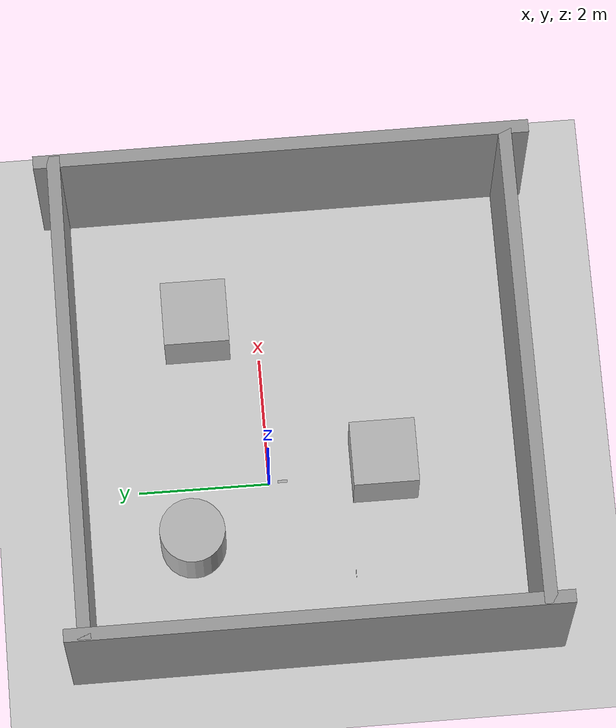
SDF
<sdf version='1.9'>
  <world name='empty'>
    <physics name='1ms' type='ignored'>
      <max_step_size>0.001</max_step_size>
      <real_time_factor>1</real_time_factor>
      <real_time_update_rate>1000</real_time_update_rate>
    </physics>
    <plugin name='gz::sim::systems::Physics' filename='ignition-gazebo-physics-system'/>
    <plugin name='gz::sim::systems::UserCommands' filename='ignition-gazebo-user-commands-system'/>
    <plugin name='gz::sim::systems::SceneBroadcaster' filename='ignition-gazebo-scene-broadcaster-system'/>
    <plugin name='gz::sim::systems::Contact' filename='ignition-gazebo-contact-system'/>
    <plugin name='gz::sim::systems::Sensors' filename='gz-sim-sensors-system'>
      <render_engine>ogre2</render_engine>
    </plugin>
    <gravity>0 0 -9.8</gravity>
    <magnetic_field>6e-06 2.3e-05 -4.2e-05</magnetic_field>
    <atmosphere type='adiabatic'/>
    <scene>
      <ambient>0.4 0.4 0.4 1</ambient>
      <background>0.7 0.7 0.7 1</background>
      <shadows>true</shadows>
    </scene>
    <model name='ground_plane'>
      <static>true</static>
      <link name='link'>
        <collision name='collision'>
          <geometry>
            <plane>
              <normal>0 0 1</normal>
              <size>100 100</size>
            </plane>
          </geometry>
          <surface>
            <friction>
              <ode/>
            </friction>
            <bounce/>
            <contact/>
          </surface>
        </collision>
        <visual name='visual'>
          <geometry>
            <plane>
              <normal>0 0 1</normal>
              <size>100 100</size>
            </plane>
          </geometry>
          <material>
            <ambient>0.8 0.8 0.8 1</ambient>
            <diffuse>0.8 0.8 0.8 1</diffuse>
            <specular>0.8 0.8 0.8 1</specular>
          </material>
        </visual>
        <pose>0 0 0 0 -0 0</pose>
        <inertial>
          <pose>0 0 0 0 -0 0</pose>
          <mass>1</mass>
          <inertia>
            <ixx>1</ixx>
            <ixy>0</ixy>
            <ixz>0</ixz>
            <iyy>1</iyy>
            <iyz>0</iyz>
            <izz>1</izz>
          </inertia>
        </inertial>
        <enable_wind>false</enable_wind>
      </link>
      <pose>0 0 0 0 -0 0</pose>
      <self_collide>false</self_collide>
    </model>
    <model name='box'>
      <pose>0.105622 -1.77155 0.5 0 -0 0</pose>
      <link name='box_link'>
        <inertial>
          <inertia>
            <ixx>0.16666</ixx>
            <ixy>0</ixy>
            <ixz>0</ixz>
            <iyy>0.16666</iyy>
            <iyz>0</iyz>
            <izz>0.16666</izz>
          </inertia>
          <mass>1</mass>
          <pose>0 0 0 0 -0 0</pose>
        </inertial>
        <collision name='box_collision'>
          <geometry>
            <box>
              <size>1 1 1</size>
            </box>
          </geometry>
          <surface>
            <friction>
              <ode/>
            </friction>
            <bounce/>
            <contact/>
          </surface>
        </collision>
        <visual name='box_visual'>
          <geometry>
            <box>
              <size>1 1 1</size>
            </box>
          </geometry>
          <material>
            <ambient>0.3 0.3 0.3 1</ambient>
            <diffuse>0.7 0.7 0.7 1</diffuse>
            <specular>1 1 1 1</specular>
          </material>
        </visual>
        <pose>0 0 0 0 -0 0</pose>
        <enable_wind>false</enable_wind>
      </link>
      <static>false</static>
      <self_collide>false</self_collide>
    </model>
    <model name='box_0'>
      <pose>2.55869 0.947512 0.5 0 -0 0</pose>
      <link name='box_link'>
        <inertial>
          <inertia>
            <ixx>0.16666</ixx>
            <ixy>0</ixy>
            <ixz>0</ixz>
            <iyy>0.16666</iyy>
            <iyz>0</iyz>
            <izz>0.16666</izz>
          </inertia>
          <mass>1</mass>
          <pose>0 0 0 0 -0 0</pose>
        </inertial>
        <collision name='box_collision'>
          <geometry>
            <box>
              <size>1 1 1</size>
            </box>
          </geometry>
          <surface>
            <friction>
              <ode/>
            </friction>
            <bounce/>
            <contact/>
          </surface>
        </collision>
        <visual name='box_visual'>
          <geometry>
            <box>
              <size>1 1 1</size>
            </box>
          </geometry>
          <material>
            <ambient>0.3 0.3 0.3 1</ambient>
            <diffuse>0.7 0.7 0.7 1</diffuse>
            <specular>1 1 1 1</specular>
          </material>
        </visual>
        <pose>0 0 0 0 -0 0</pose>
        <enable_wind>false</enable_wind>
      </link>
      <static>false</static>
      <self_collide>false</self_collide>
    </model>
    <model name='cylinder'>
      <pose>-0.902101 1.22706 0.499999 0 -0 0</pose>
      <link name='cylinder_link'>
        <inertial>
          <inertia>
            <ixx>0.14580000000000001</ixx>
            <ixy>0</ixy>
            <ixz>0</ixz>
            <iyy>0.14580000000000001</iyy>
            <iyz>0</iyz>
            <izz>0.125</izz>
          </inertia>
          <mass>1</mass>
          <pose>0 0 0 0 -0 0</pose>
        </inertial>
        <collision name='cylinder_collision'>
          <geometry>
            <cylinder>
              <radius>0.5</radius>
              <length>1</length>
            </cylinder>
          </geometry>
          <surface>
            <friction>
              <ode/>
            </friction>
            <bounce/>
            <contact/>
          </surface>
        </collision>
        <visual name='cylinder_visual'>
          <geometry>
            <cylinder>
              <radius>0.5</radius>
              <length>1</length>
            </cylinder>
          </geometry>
          <material>
            <ambient>0.3 0.3 0.3 1</ambient>
            <diffuse>0.7 0.7 0.7 1</diffuse>
            <specular>1 1 1 1</specular>
          </material>
        </visual>
        <pose>0 0 0 0 -0 0</pose>
        <enable_wind>false</enable_wind>
      </link>
      <static>false</static>
      <self_collide>false</self_collide>
    </model>
    <model name='grey_wall'>
      <static>true</static>
      <link name='link'>
        <pose>0 0 1.4 0 -0 0</pose>
        <collision name='collision'>
          <geometry>
            <box>
              <size>7.5 0.2 2.8</size>
            </box>
          </geometry>
          <surface>
            <friction>
              <ode/>
            </friction>
            <bounce/>
            <contact/>
          </surface>
        </collision>
        <visual name='visual'>
          <cast_shadows>false</cast_shadows>
          <geometry>
            <box>
              <size>7.5 0.2 2.8</size>
            </box>
          </geometry>
          <material>
            <script>
              <uri>https://fuel.gazebosim.org/1.0/openrobotics/models/grey wall/3/files/materials/scripts</uri>
              <uri>https://fuel.gazebosim.org/1.0/openrobotics/models/grey wall/3/files/materials/textures</uri>
              <name>vrc/grey_wall</name>
            </script>
          </material>
        </visual>
        <inertial>
          <pose>0 0 0 0 -0 0</pose>
          <mass>1</mass>
          <inertia>
            <ixx>1</ixx>
            <ixy>0</ixy>
            <ixz>0</ixz>
            <iyy>1</iyy>
            <iyz>0</iyz>
            <izz>1</izz>
          </inertia>
        </inertial>
        <enable_wind>false</enable_wind>
      </link>
      <pose>0.845785 2.89804 0 0 -0 0</pose>
      <self_collide>false</self_collide>
    </model>
    <model name='grey_wall_0'>
      <static>true</static>
      <link name='link'>
        <pose>0 0 1.4 0 -0 0</pose>
        <collision name='collision'>
          <geometry>
            <box>
              <size>7.5 0.2 2.8</size>
            </box>
          </geometry>
          <surface>
            <friction>
              <ode/>
            </friction>
            <bounce/>
            <contact/>
          </surface>
        </collision>
        <visual name='visual'>
          <cast_shadows>false</cast_shadows>
          <geometry>
            <box>
              <size>7.5 0.2 2.8</size>
            </box>
          </geometry>
          <material>
            <script>
              <uri>https://fuel.gazebosim.org/1.0/openrobotics/models/grey wall/3/files/materials/scripts</uri>
              <uri>https://fuel.gazebosim.org/1.0/openrobotics/models/grey wall/3/files/materials/textures</uri>
              <name>vrc/grey_wall</name>
            </script>
          </material>
        </visual>
        <inertial>
          <pose>0 0 0 0 -0 0</pose>
          <mass>1</mass>
          <inertia>
            <ixx>1</ixx>
            <ixy>0</ixy>
            <ixz>0</ixz>
            <iyy>1</iyy>
            <iyz>0</iyz>
            <izz>1</izz>
          </inertia>
        </inertial>
        <enable_wind>false</enable_wind>
      </link>
      <pose>0.849351 -3.93142 0 0 -0 0</pose>
      <self_collide>false</self_collide>
    </model>
    <model name='grey_wall_1'>
      <static>true</static>
      <link name='link'>
        <pose>0 0 1.4 0 -0 0</pose>
        <collision name='collision'>
          <geometry>
            <box>
              <size>7.5 0.2 2.8</size>
            </box>
          </geometry>
          <surface>
            <friction>
              <ode/>
            </friction>
            <bounce/>
            <contact/>
          </surface>
        </collision>
        <visual name='visual'>
          <cast_shadows>false</cast_shadows>
          <geometry>
            <box>
              <size>7.5 0.2 2.8</size>
            </box>
          </geometry>
          <material>
            <script>
              <uri>https://fuel.gazebosim.org/1.0/openrobotics/models/grey wall/3/files/materials/scripts</uri>
              <uri>https://fuel.gazebosim.org/1.0/openrobotics/models/grey wall/3/files/materials/textures</uri>
              <name>vrc/grey_wall</name>
            </script>
          </material>
        </visual>
        <inertial>
          <pose>0 0 0 0 -0 0</pose>
          <mass>1</mass>
          <inertia>
            <ixx>1</ixx>
            <ixy>0</ixy>
            <ixz>0</ixz>
            <iyy>1</iyy>
            <iyz>0</iyz>
            <izz>1</izz>
          </inertia>
        </inertial>
        <enable_wind>false</enable_wind>
      </link>
      <pose>4.51987 -0.546929 0 0 -0 1.57193</pose>
      <self_collide>false</self_collide>
    </model>
    <model name='grey_wall_2'>
      <static>true</static>
      <link name='link'>
        <pose>0 0 1.4 0 -0 0</pose>
        <collision name='collision'>
          <geometry>
            <box>
              <size>7.5 0.2 2.8</size>
            </box>
          </geometry>
          <surface>
            <friction>
              <ode/>
            </friction>
            <bounce/>
            <contact/>
          </surface>
        </collision>
        <visual name='visual'>
          <cast_shadows>false</cast_shadows>
          <geometry>
            <box>
              <size>7.5 0.2 2.8</size>
            </box>
          </geometry>
          <material>
            <script>
              <uri>https://fuel.gazebosim.org/1.0/openrobotics/models/grey wall/3/files/materials/scripts</uri>
              <uri>https://fuel.gazebosim.org/1.0/openrobotics/models/grey wall/3/files/materials/textures</uri>
              <name>vrc/grey_wall</name>
            </script>
          </material>
        </visual>
        <inertial>
          <pose>0 0 0 0 -0 0</pose>
          <mass>1</mass>
          <inertia>
            <ixx>1</ixx>
            <ixy>0</ixy>
            <ixz>0</ixz>
            <iyy>1</iyy>
            <iyz>0</iyz>
            <izz>1</izz>
          </inertia>
        </inertial>
        <enable_wind>false</enable_wind>
      </link>
      <pose>-2.81693 -0.548708 0 0 -0 1.57219</pose>
      <self_collide>false</self_collide>
    </model>

    <light name='sun' type='directional'>
      <pose>0 0 10 0 -0 0</pose>
      <cast_shadows>true</cast_shadows>
      <intensity>1</intensity>
      <direction>-0.5 0.1 -0.9</direction>
      <diffuse>0.8 0.8 0.8 1</diffuse>
      <specular>0.2 0.2 0.2 1</specular>
      <attenuation>
        <range>1000</range>
        <linear>0.01</linear>
        <constant>0.90000000000000002</constant>
        <quadratic>0.001</quadratic>
      </attenuation>
      <spot>
        <inner_angle>0</inner_angle>
        <outer_angle>0</outer_angle>
        <falloff>0</falloff>
      </spot>
    </light>

    <model name='aruco_marker_13'>
      <static>true</static>
      <pose>0.0 -0.21 0.115 0 0 0</pose>
      <link name='link'>
        <visual name='visual'>
          <pose>0 0 0 0 0 0</pose>
          <geometry>
            <box>
              <size>0.001 0.15 0.15</size>
            </box>
          </geometry>
          <material>
            <ambient>1 1 1 1</ambient>
            <diffuse>1 1 1 1</diffuse>
            <specular>0 0 0 1</specular>
            <emissive>0 0 0 1</emissive>
            <pbr>
              <metal>
                <albedo_map>file:///workspaces/rosaut-diffrobot_devcontainer_multi/src/rosaut-gopigo3_ros2-e0b3d4594a55/gopigo3_simulation/materials/textures/marker13.png</albedo_map>
              </metal>
            </pbr>
          </material>
        </visual>
      </link>
    </model>

    <model name='aruco_marker_25'>
      <static>true</static>
      <pose>-1.54 -1.22 0.115 0 0 1.5708</pose>
      <link name='link'>
        <visual name='visual'>
          <pose>0 0 0 0 0 0</pose>
          <geometry>
            <box>
              <size>0.001 0.15 0.15</size>
            </box>
          </geometry>
          <material>
            <ambient>1 1 1 1</ambient>
            <diffuse>1 1 1 1</diffuse>
            <specular>0 0 0 1</specular>
            <emissive>0 0 0 1</emissive>
            <pbr>
              <metal>
                <albedo_map>file:///workspaces/rosaut-diffrobot_devcontainer_multi/src/rosaut-gopigo3_ros2-e0b3d4594a55/gopigo3_simulation/materials/textures/marker25.png</albedo_map>
              </metal>
            </pbr>
          </material>
        </visual>
      </link>
    </model>
  </world>
</sdf>
